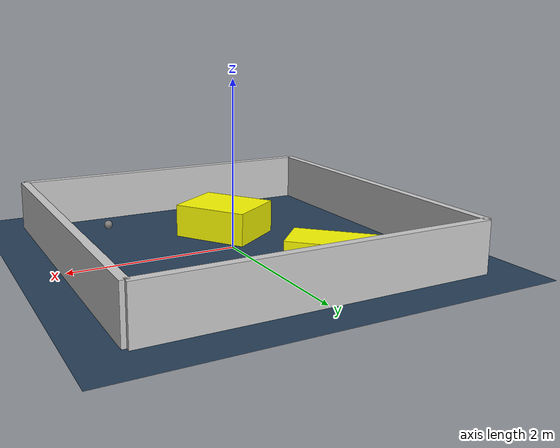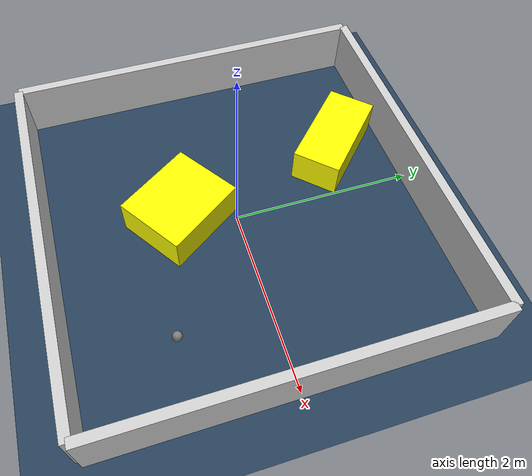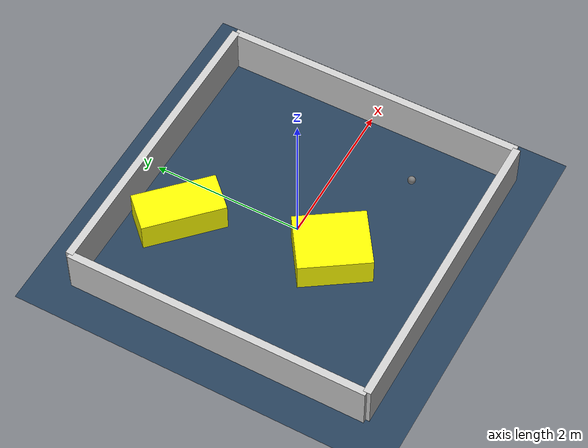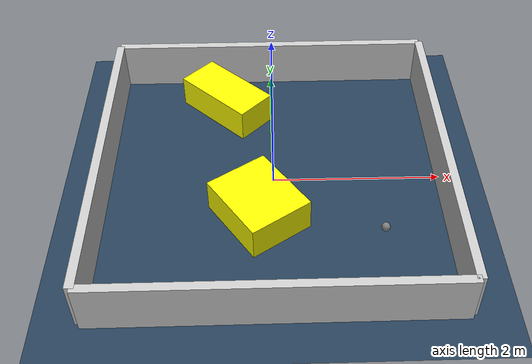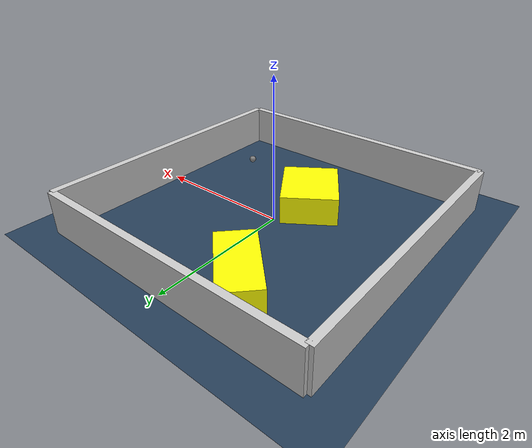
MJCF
<?xml version="1.0" ?>
<mujoco model="generated_environment">
  <option timestep="0.01" integrator="RK4" cone="elliptic"/>
  <default>
    <geom density="1"/>
  </default>
  <asset>
    <texture builtin="gradient" height="3072" rgb1="0.3 0.5 0.7" rgb2="0 0 0" type="skybox" width="512"/>
    <texture builtin="checker" height="300" mark="edge" markrgb="0.8 0.8 0.8" name="groundplane" rgb1="0.2 0.3 0.4" rgb2="0.1 0.2 0.3" type="2d" width="300"/>
    <material name="groundplane" reflectance="0.2" texrepeat="5 5" texture="groundplane" texuniform="true"/>
    <material name="robot" rgba="0.0 1.0 0.0 1"/>
  </asset>
  <worldbody>
    <light dir="0 0 -1" directional="true" pos="0 0 1.5"/>
    <geom condim="4" friction="1.0 0.005 0.001" material="groundplane" name="floor" size="0 0 0.05" type="plane"/>
    <body name="walls">
      <geom name="wall_1" condim="4" pos="-2.0 0.0 0.3" rgba="0.800000011920929 0.800000011920929 0.800000011920929 1.0" size="0.05 2.0 0.3" type="box"/>
      <geom name="wall_2" condim="4" pos="2.0 0.0 0.3" rgba="0.800000011920929 0.800000011920929 0.800000011920929 1.0" size="0.05 2.0 0.3" type="box"/>
      <geom name="wall_3" condim="4" pos="0.0 -2.0 0.3" rgba="0.800000011920929 0.800000011920929 0.800000011920929 1.0" size="2.0 0.05 0.3" type="box"/>
      <geom name="wall_4" condim="4" pos="0.0 2.0 0.3" rgba="0.800000011920929 0.800000011920929 0.800000011920929 1.0" size="2.0 0.05 0.3" type="box"/>
    </body>
    <body name="robot">
      <joint name="joint_x" type="slide" pos="0 0 0" axis="1 0 0"/>
      <joint name="joint_y" type="slide" pos="0 0 0" axis="0 1 0"/>
      <geom name="robot" type="sphere" pos="1.2258087592624318 -0.9542296060851624 0.2" size="0.05" mass="5." friction="1.0 0.005 0.0001" condim="4"/>
      <site name="sensor_ball"/>
    </body>
    <body name="obstacle_1_movable">
      <geom name="obstacle_1_movable" condim="4" pos="-0.5825075247282306 1.337130778069187 0.2" euler="0 0 315.9085245911001" friction="1.0 0.005 0.001" rgba="1 1 0 1" size="0.5440850852109484 0.2635821802998409 0.2" type="box" mass="0.1"/>
      <joint type="free"/>
    </body>
    <body name="obstacle_2_movable">
      <geom name="obstacle_2_movable" condim="4" pos="-0.1772116646421269 -0.5800071205220505 0.2" euler="0 0 124.14665430632436" friction="1.0 0.005 0.001" rgba="1 1 0 1" size="0.465192143758335 0.39025927062261334 0.2" type="box" mass="0.1"/>
      <joint type="free"/>
    </body>
  </worldbody>
  <actuator>
    <motor name="actuator_x" joint="joint_x" gear="1" ctrlrange="-1 1"/>
    <motor name="actuator_y" joint="joint_y" gear="1" ctrlrange="-1 1"/>
  </actuator>
</mujoco>
